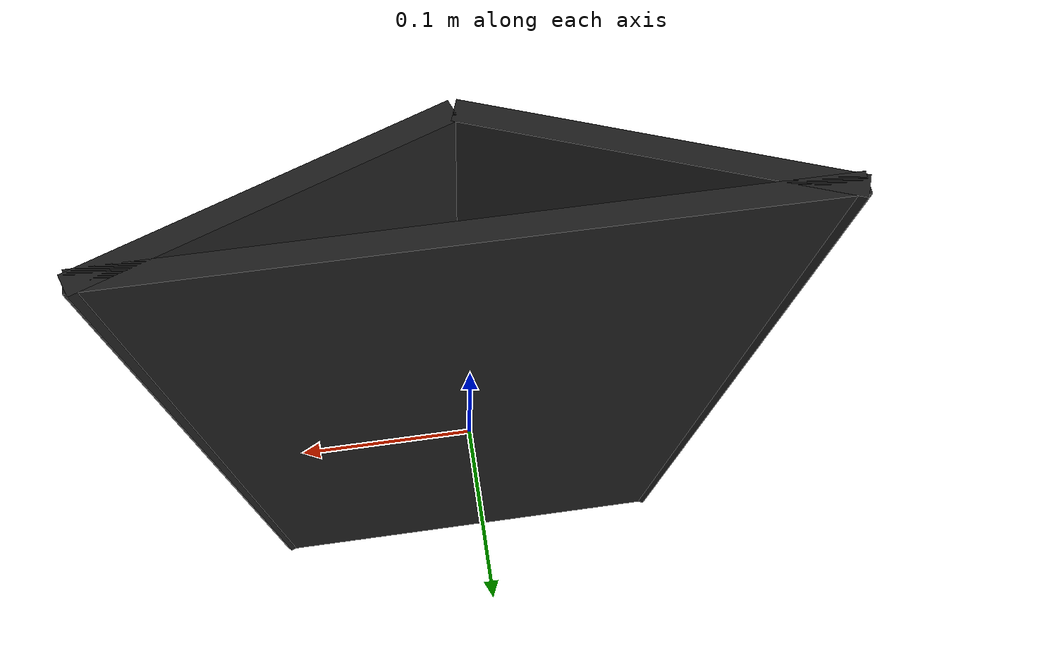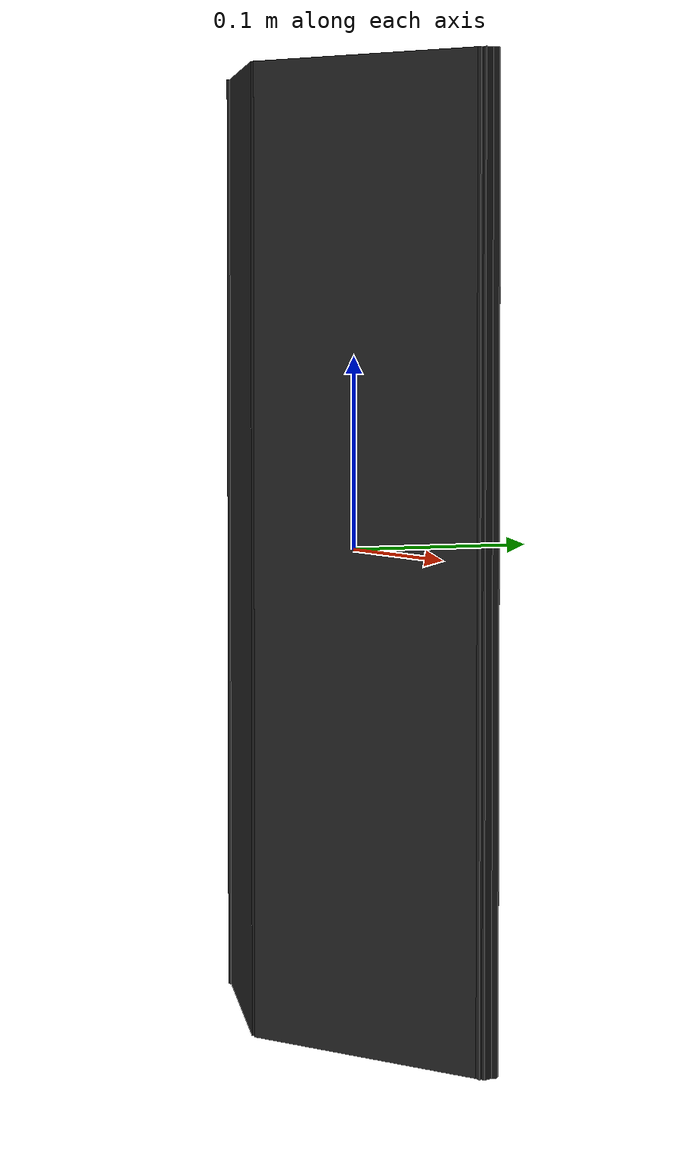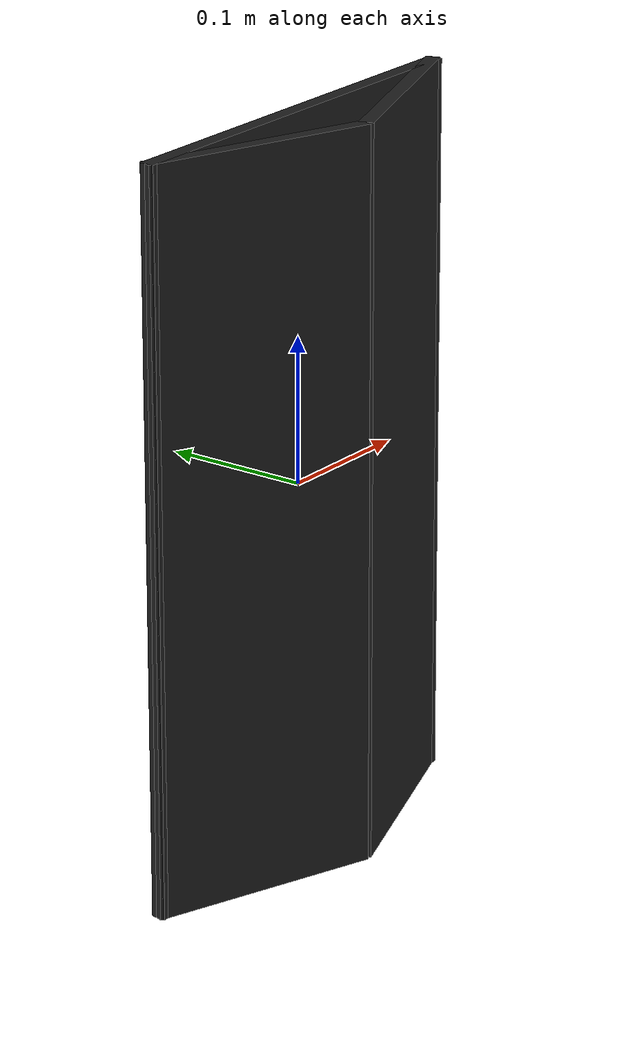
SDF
<?xml version="1.0" ?>
<sdf version='1.5'>
  <model name="trapezium">
      <static>1</static>
      <link name='link'>
        <inertial>
          <mass>0.25</mass>
          <inertia>
            <ixx>0.00015</ixx>
            <ixy>0.000000</ixy>
            <ixz>0.000000</ixz>
            <iyy>0.00015</iyy>
            <iyz>0.000000</iyz>
            <izz>0.00015</izz>
          </inertia>
        </inertial>
        <collision name='front_c'>
          <geometry>
            <box>
              <size>0.30 0.01 0.50</size>
            </box>
          </geometry>
          <laser_retro>8000</laser_retro>
          <surface>
            <friction>
              <ode>
                <mu>30.0</mu>
                <mu2>30.0</mu2>
              </ode>
            </friction>
            <contact>
              <ode>
                <kp>1000000.0</kp>
                <kd>100.0</kd>
                <max_vel>1.0</max_vel>
                <min_depth>0.002</min_depth>
              </ode>
            </contact>
          </surface>
        </collision>
        <visual name='front_v'>
          <geometry>
            <box>
              <size>0.30 0.01 0.50</size>
            </box>
          </geometry>
          <material>
            <script>
              <uri>file://media/materials/scripts/gazebo.material</uri>
              <name>Gazebo/Black</name>
            </script>
          </material>
        </visual>
        <collision name="side_1_c">
          <pose>0.075 -0.0256515 0 0 0 0.3490658503988659</pose>
          <geometry>
            <box>
              <size>0.159626 0.01 0.5</size>
            </box>
          </geometry>
          <laser_retro>8000</laser_retro>
        </collision>
        <visual name="side_1_v">
          <pose>0.075 -0.0256515 0 0 0 0.3490658503988659</pose>
          <geometry>
            <box>
              <size>0.159626 0.01 0.5</size>
            </box>
          </geometry>
          <material>
            <script>
              <uri>file://media/materials/scripts/gazebo.material</uri>
              <name>Gazebo/Black</name>
            </script>
          </material>
        </visual>
        <collision name="side_2_c">
          <pose>-0.075 -0.0256515 0 0 0 -0.3490658503988659</pose>
          <geometry>
            <box>
              <size>0.159626 0.01 0.5</size>
            </box>
          </geometry>
          <laser_retro>8000</laser_retro>
        </collision>
        <visual name="side_2_v">
          <pose>-0.075 -0.0256515 0 0 0 -0.3490658503988659</pose>
          <geometry>
            <box>
              <size>0.159626 0.01 0.5</size>
            </box>
          </geometry>
          <material>
            <script>
              <uri>file://media/materials/scripts/gazebo.material</uri>
              <name>Gazebo/Black</name>
            </script>
          </material>
        </visual>
        <velocity_decay>
          <linear>0.000000</linear>
          <angular>0.000000</angular>
        </velocity_decay>
        <self_collide>0</self_collide>
        <kinematic>0</kinematic>
        <gravity>1</gravity>
      </link>
  </model>
</sdf>
